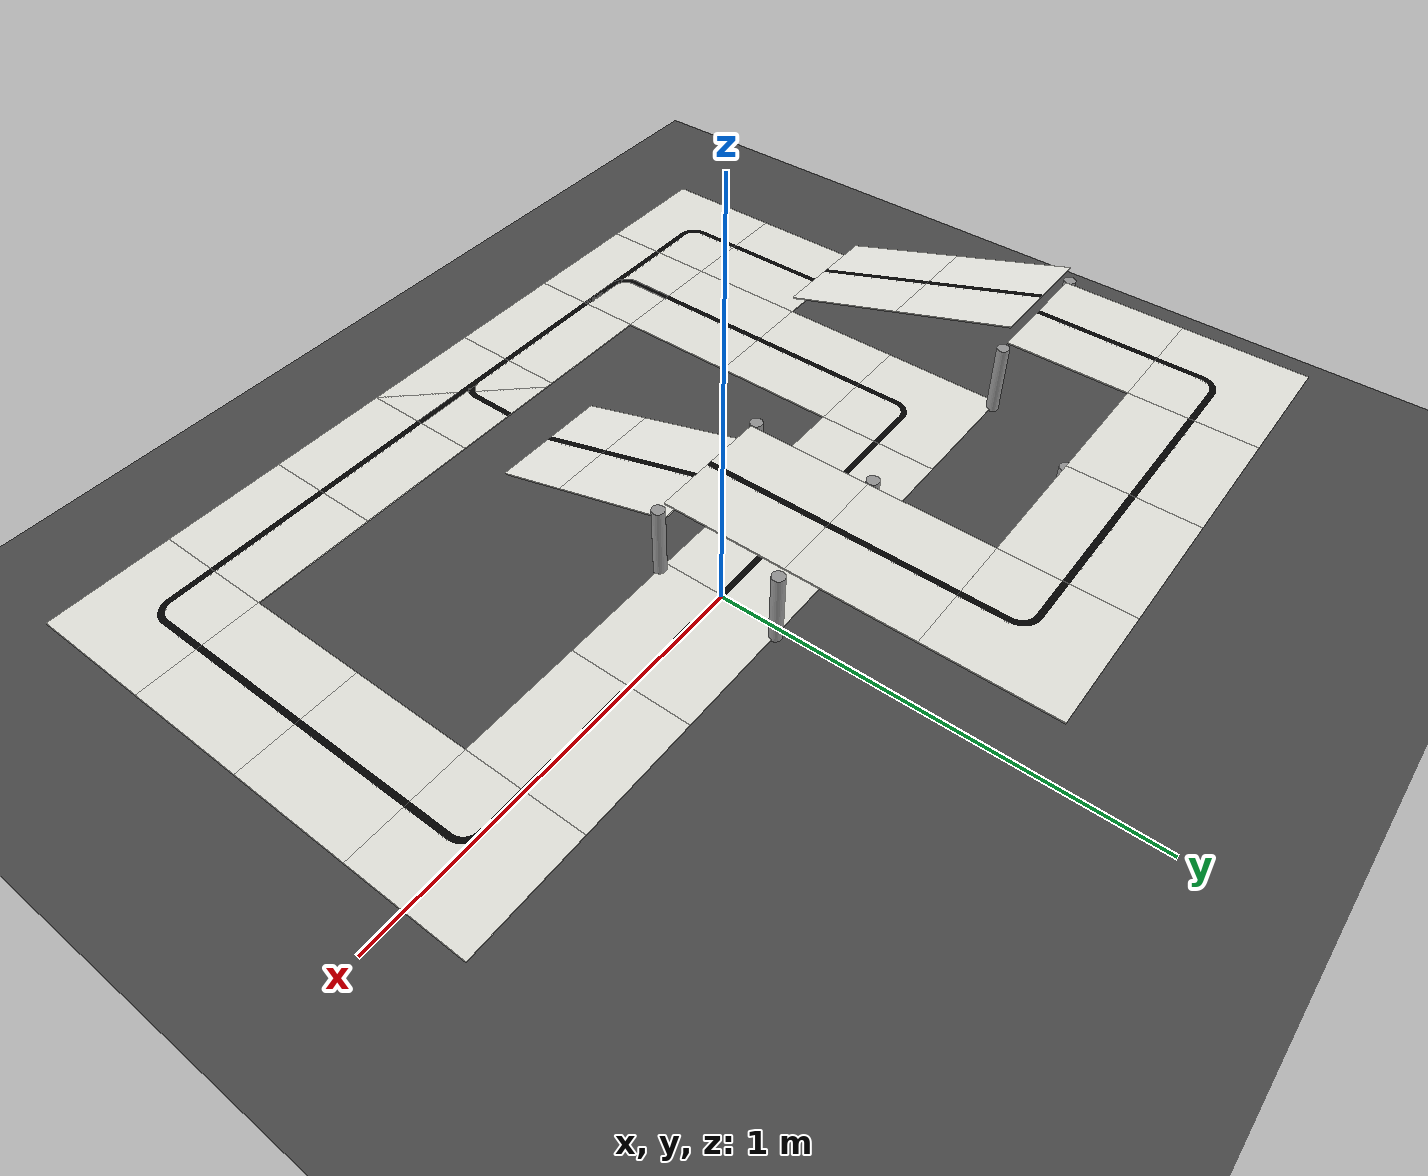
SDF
<sdf version='1.7'>
  <world name='default'>
    <!-- Iluminacao Natural Solar Suave (Sem ofuscamento, com sombras realistas) -->
    <light name='sun' type='directional'>
      <cast_shadows>0</cast_shadows>
      <pose>5 5 10 0 0.45 0.75</pose>
      <diffuse>0.85 0.85 0.82 1</diffuse>
      <specular>0.15 0.15 0.15 1</specular>
      <attenuation>
        <range>1000</range>
        <constant>0.9</constant>
        <linear>0.01</linear>
        <quadratic>0.001</quadratic>
      </attenuation>
      <direction>-0.45 -0.45 -0.77</direction>
    </light>

    <scene>
      <ambient>0.45 0.45 0.45 1</ambient>
      <background>0.65 0.75 0.85 1</background>
      <shadows>0</shadows>
    </scene>

    <model name='ground_plane'>
      <static>1</static>
      <link name='link'>
        <collision name='collision'>
          <geometry>
            <plane>
              <normal>0 0 1</normal>
              <size>100 100</size>
            </plane>
          </geometry>
          <surface>
            <contact><collide_bitmask>65535</collide_bitmask><ode/></contact>
            <friction>
              <ode><mu>100</mu><mu2>50</mu2></ode>
              <torsional><ode/></torsional>
            </friction>
            <bounce/>
          </surface>
        </collision>
        <visual name='visual'>
          <cast_shadows>0</cast_shadows>
          <geometry>
            <plane>
              <normal>0 0 1</normal>
              <size>100 100</size>
            </plane>
          </geometry>
          <material>
            <script>
              <uri>file://media/materials/scripts/gazebo.material</uri>
              <name>Gazebo/DarkGrey</name>
            </script>
          </material>
        </visual>
      </link>
    </model>

    <gravity>0 0 -9.8</gravity>
    <magnetic_field>6e-06 2.3e-05 -4.2e-05</magnetic_field>
    <atmosphere type='adiabatic'/>
    <physics type='ode'>
      <max_step_size>0.001</max_step_size>
      <real_time_factor>1</real_time_factor>
      <real_time_update_rate>1000</real_time_update_rate>
    </physics>

    <audio>
      <device>none</device>
    </audio>

    <spherical_coordinates>
      <surface_model>EARTH_WGS84</surface_model>
      <latitude_deg>0</latitude_deg>
      <longitude_deg>0</longitude_deg>
      <elevation>0</elevation>
      <heading_deg>0</heading_deg>
    </spherical_coordinates>

    <model name='tile_reta_g1'>
      <static>1</static>
      <link name='link'>
        <visual name='visual'>
          <pose>0 0 0 1.5708 -0 0</pose>
          <geometry>
            <mesh>
              <uri>/workspace/tiles/tile-reta/meshes/tile_reta.dae</uri>
              <scale>1 1 1</scale>
            </mesh>
          </geometry>
        </visual>
        <collision name='collision'>
          <geometry>
            <box>
              <size>0.30 0.30 0.003</size>
            </box>
          </geometry>
          <surface>
            <contact><ode/></contact>
            <friction>
              <ode><mu>100</mu><mu2>50</mu2></ode>
              <torsional><ode/></torsional>
            </friction>
          </surface>
        </collision>
      </link>
      <pose>-0.6000 0.1500 0.0010 0 0.000000 0.000000</pose>
    </model>

    <model name='tile_reta_tunnel'>
      <static>1</static>
      <link name='link'>
        <visual name='visual'>
          <pose>0 0 0 1.5708 -0 0</pose>
          <geometry>
            <mesh>
              <uri>/workspace/tiles/tile-reta/meshes/tile_reta.dae</uri>
              <scale>1 1 1</scale>
            </mesh>
          </geometry>
        </visual>
        <collision name='collision'>
          <geometry>
            <box>
              <size>0.30 0.30 0.003</size>
            </box>
          </geometry>
          <surface>
            <contact><ode/></contact>
            <friction>
              <ode><mu>100</mu><mu2>50</mu2></ode>
              <torsional><ode/></torsional>
            </friction>
          </surface>
        </collision>
      </link>
      <pose>-0.3000 0.1500 0.0010 0 0.000000 0.000000</pose>
    </model>

    <model name='tile_reta_g3'>
      <static>1</static>
      <link name='link'>
        <visual name='visual'>
          <pose>0 0 0 1.5708 -0 0</pose>
          <geometry>
            <mesh>
              <uri>/workspace/tiles/tile-reta/meshes/tile_reta.dae</uri>
              <scale>1 1 1</scale>
            </mesh>
          </geometry>
        </visual>
        <collision name='collision'>
          <geometry>
            <box>
              <size>0.30 0.30 0.003</size>
            </box>
          </geometry>
          <surface>
            <contact><ode/></contact>
            <friction>
              <ode><mu>100</mu><mu2>50</mu2></ode>
              <torsional><ode/></torsional>
            </friction>
          </surface>
        </collision>
      </link>
      <pose>0.0000 0.1500 0.0010 0 0.000000 0.000000</pose>
    </model>

    <model name='tile_reta_g4'>
      <static>1</static>
      <link name='link'>
        <visual name='visual'>
          <pose>0 0 0 1.5708 -0 0</pose>
          <geometry>
            <mesh>
              <uri>/workspace/tiles/tile-reta/meshes/tile_reta.dae</uri>
              <scale>1 1 1</scale>
            </mesh>
          </geometry>
        </visual>
        <collision name='collision'>
          <geometry>
            <box>
              <size>0.30 0.30 0.003</size>
            </box>
          </geometry>
          <surface>
            <contact><ode/></contact>
            <friction>
              <ode><mu>100</mu><mu2>50</mu2></ode>
              <torsional><ode/></torsional>
            </friction>
          </surface>
        </collision>
      </link>
      <pose>0.3000 0.1500 0.0010 0 0.000000 0.000000</pose>
    </model>

    <model name='tile_curva_r1'>
      <static>1</static>
      <link name='link'>
        <visual name='visual'>
          <pose>0 0 0 1.5708 -0 0</pose>
          <geometry>
            <mesh>
              <uri>/workspace/tiles/tile-curva/meshes/tile_curva.dae</uri>
              <scale>1 1 1</scale>
            </mesh>
          </geometry>
        </visual>
        <collision name='collision'>
          <geometry>
            <box>
              <size>0.30 0.30 0.003</size>
            </box>
          </geometry>
          <surface>
            <contact><ode/></contact>
            <friction>
              <ode><mu>100</mu><mu2>50</mu2></ode>
              <torsional><ode/></torsional>
            </friction>
          </surface>
        </collision>
      </link>
      <pose>0.6000 0.1500 0.0010 0 0.000000 0.000000</pose>
    </model>

    <model name='tile_reta_r2'>
      <static>1</static>
      <link name='link'>
        <visual name='visual'>
          <pose>0 0 0 1.5708 -0 0</pose>
          <geometry>
            <mesh>
              <uri>/workspace/tiles/tile-reta/meshes/tile_reta.dae</uri>
              <scale>1 1 1</scale>
            </mesh>
          </geometry>
        </visual>
        <collision name='collision'>
          <geometry>
            <box>
              <size>0.30 0.30 0.003</size>
            </box>
          </geometry>
          <surface>
            <contact><ode/></contact>
            <friction>
              <ode><mu>100</mu><mu2>50</mu2></ode>
              <torsional><ode/></torsional>
            </friction>
          </surface>
        </collision>
      </link>
      <pose>0.9000 -0.1500 0.0010 0 0.000000 4.712400</pose>
    </model>

    <model name='tile_reta_r3'>
      <static>1</static>
      <link name='link'>
        <visual name='visual'>
          <pose>0 0 0 1.5708 -0 0</pose>
          <geometry>
            <mesh>
              <uri>/workspace/tiles/tile-reta/meshes/tile_reta.dae</uri>
              <scale>1 1 1</scale>
            </mesh>
          </geometry>
        </visual>
        <collision name='collision'>
          <geometry>
            <box>
              <size>0.30 0.30 0.003</size>
            </box>
          </geometry>
          <surface>
            <contact><ode/></contact>
            <friction>
              <ode><mu>100</mu><mu2>50</mu2></ode>
              <torsional><ode/></torsional>
            </friction>
          </surface>
        </collision>
      </link>
      <pose>0.9000 -0.4500 0.0010 0 0.000000 4.712400</pose>
    </model>

    <model name='tile_curva_r4'>
      <static>1</static>
      <link name='link'>
        <visual name='visual'>
          <pose>0 0 0 1.5708 -0 0</pose>
          <geometry>
            <mesh>
              <uri>/workspace/tiles/tile-curva/meshes/tile_curva.dae</uri>
              <scale>1 1 1</scale>
            </mesh>
          </geometry>
        </visual>
        <collision name='collision'>
          <geometry>
            <box>
              <size>0.30 0.30 0.003</size>
            </box>
          </geometry>
          <surface>
            <contact><ode/></contact>
            <friction>
              <ode><mu>100</mu><mu2>50</mu2></ode>
              <torsional><ode/></torsional>
            </friction>
          </surface>
        </collision>
      </link>
      <pose>0.9000 -0.7500 0.0010 0 0.000000 4.712400</pose>
    </model>

    <model name='tile_reta_s1'>
      <static>1</static>
      <link name='link'>
        <visual name='visual'>
          <pose>0 0 0 1.5708 -0 0</pose>
          <geometry>
            <mesh>
              <uri>/workspace/tiles/tile-reta/meshes/tile_reta.dae</uri>
              <scale>1 1 1</scale>
            </mesh>
          </geometry>
        </visual>
        <collision name='collision'>
          <geometry>
            <box>
              <size>0.30 0.30 0.003</size>
            </box>
          </geometry>
          <surface>
            <contact><ode/></contact>
            <friction>
              <ode><mu>100</mu><mu2>50</mu2></ode>
              <torsional><ode/></torsional>
            </friction>
          </surface>
        </collision>
      </link>
      <pose>0.6000 -1.0500 0.0010 0 0.000000 3.141600</pose>
    </model>

    <model name='tile_reta_s2'>
      <static>1</static>
      <link name='link'>
        <visual name='visual'>
          <pose>0 0 0 1.5708 -0 0</pose>
          <geometry>
            <mesh>
              <uri>/workspace/tiles/tile-reta/meshes/tile_reta.dae</uri>
              <scale>1 1 1</scale>
            </mesh>
          </geometry>
        </visual>
        <collision name='collision'>
          <geometry>
            <box>
              <size>0.30 0.30 0.003</size>
            </box>
          </geometry>
          <surface>
            <contact><ode/></contact>
            <friction>
              <ode><mu>100</mu><mu2>50</mu2></ode>
              <torsional><ode/></torsional>
            </friction>
          </surface>
        </collision>
      </link>
      <pose>0.3000 -1.0500 0.0010 0 0.000000 3.141600</pose>
    </model>

    <model name='tile_reta_s3'>
      <static>1</static>
      <link name='link'>
        <visual name='visual'>
          <pose>0 0 0 1.5708 -0 0</pose>
          <geometry>
            <mesh>
              <uri>/workspace/tiles/tile-reta/meshes/tile_reta.dae</uri>
              <scale>1 1 1</scale>
            </mesh>
          </geometry>
        </visual>
        <collision name='collision'>
          <geometry>
            <box>
              <size>0.30 0.30 0.003</size>
            </box>
          </geometry>
          <surface>
            <contact><ode/></contact>
            <friction>
              <ode><mu>100</mu><mu2>50</mu2></ode>
              <torsional><ode/></torsional>
            </friction>
          </surface>
        </collision>
      </link>
      <pose>0.0000 -1.0500 0.0010 0 0.000000 3.141600</pose>
    </model>

    <model name='tile_reta_s4'>
      <static>1</static>
      <link name='link'>
        <visual name='visual'>
          <pose>0 0 0 1.5708 -0 0</pose>
          <geometry>
            <mesh>
              <uri>/workspace/tiles/tile-reta/meshes/tile_reta.dae</uri>
              <scale>1 1 1</scale>
            </mesh>
          </geometry>
        </visual>
        <collision name='collision'>
          <geometry>
            <box>
              <size>0.30 0.30 0.003</size>
            </box>
          </geometry>
          <surface>
            <contact><ode/></contact>
            <friction>
              <ode><mu>100</mu><mu2>50</mu2></ode>
              <torsional><ode/></torsional>
            </friction>
          </surface>
        </collision>
      </link>
      <pose>-0.3000 -1.0500 0.0010 0 0.000000 3.141600</pose>
    </model>

    <model name='tile_reta_s5'>
      <static>1</static>
      <link name='link'>
        <visual name='visual'>
          <pose>0 0 0 1.5708 -0 0</pose>
          <geometry>
            <mesh>
              <uri>/workspace/tiles/tile-reta/meshes/tile_reta.dae</uri>
              <scale>1 1 1</scale>
            </mesh>
          </geometry>
        </visual>
        <collision name='collision'>
          <geometry>
            <box>
              <size>0.30 0.30 0.003</size>
            </box>
          </geometry>
          <surface>
            <contact><ode/></contact>
            <friction>
              <ode><mu>100</mu><mu2>50</mu2></ode>
              <torsional><ode/></torsional>
            </friction>
          </surface>
        </collision>
      </link>
      <pose>-0.6000 -1.0500 0.0010 0 0.000000 3.141600</pose>
    </model>

    <model name='tile_curva_w1'>
      <static>1</static>
      <link name='link'>
        <visual name='visual'>
          <pose>0 0 0 1.5708 -0 0</pose>
          <geometry>
            <mesh>
              <uri>/workspace/tiles/tile-curva/meshes/tile_curva.dae</uri>
              <scale>1 1 1</scale>
            </mesh>
          </geometry>
        </visual>
        <collision name='collision'>
          <geometry>
            <box>
              <size>0.30 0.30 0.003</size>
            </box>
          </geometry>
          <surface>
            <contact><ode/></contact>
            <friction>
              <ode><mu>100</mu><mu2>50</mu2></ode>
              <torsional><ode/></torsional>
            </friction>
          </surface>
        </collision>
      </link>
      <pose>-0.9000 -1.0500 0.0010 0 0.000000 3.141600</pose>
    </model>

    <model name='tile_reta_w2'>
      <static>1</static>
      <link name='link'>
        <visual name='visual'>
          <pose>0 0 0 1.5708 -0 0</pose>
          <geometry>
            <mesh>
              <uri>/workspace/tiles/tile-reta/meshes/tile_reta.dae</uri>
              <scale>1 1 1</scale>
            </mesh>
          </geometry>
        </visual>
        <collision name='collision'>
          <geometry>
            <box>
              <size>0.30 0.30 0.003</size>
            </box>
          </geometry>
          <surface>
            <contact><ode/></contact>
            <friction>
              <ode><mu>100</mu><mu2>50</mu2></ode>
              <torsional><ode/></torsional>
            </friction>
          </surface>
        </collision>
      </link>
      <pose>-1.2000 -0.7500 0.0010 0 0.000000 1.570800</pose>
    </model>

    <model name='tile_rampa_subida_1'>
      <static>1</static>
      <link name='link'>
        <visual name='visual'>
          <pose>0 0 0 1.5708 -0 0</pose>
          <geometry>
            <mesh>
              <uri>/workspace/tiles/tile-reta/meshes/tile_reta.dae</uri>
              <scale>1.05 1 1</scale>
            </mesh>
          </geometry>
        </visual>
        <collision name='collision'>
          <geometry>
            <box>
              <size>0.315 0.30 0.006</size>
            </box>
          </geometry>
          <surface>
            <contact><ode/></contact>
            <friction>
              <ode><mu>100</mu><mu2>50</mu2></ode>
              <torsional><ode/></torsional>
            </friction>
          </surface>
        </collision>
      </link>
      <pose>-1.2000 -0.4500 0.0460 0 -0.291457 1.570800</pose>
    </model>

    <model name='tile_rampa_subida_2'>
      <static>1</static>
      <link name='link'>
        <visual name='visual'>
          <pose>0 0 0 1.5708 -0 0</pose>
          <geometry>
            <mesh>
              <uri>/workspace/tiles/tile-reta/meshes/tile_reta.dae</uri>
              <scale>1.05 1 1</scale>
            </mesh>
          </geometry>
        </visual>
        <collision name='collision'>
          <geometry>
            <box>
              <size>0.315 0.30 0.006</size>
            </box>
          </geometry>
          <surface>
            <contact><ode/></contact>
            <friction>
              <ode><mu>100</mu><mu2>50</mu2></ode>
              <torsional><ode/></torsional>
            </friction>
          </surface>
        </collision>
      </link>
      <pose>-1.2000 -0.1500 0.1360 0 -0.291457 1.570800</pose>
    </model>

    <model name='tile_reta_topo_w'>
      <static>1</static>
      <link name='link'>
        <visual name='visual'>
          <pose>0 0 0 1.5708 -0 0</pose>
          <geometry>
            <mesh>
              <uri>/workspace/tiles/tile-reta/meshes/tile_reta.dae</uri>
              <scale>1 1 1</scale>
            </mesh>
          </geometry>
        </visual>
        <collision name='collision'>
          <geometry>
            <box>
              <size>0.30 0.30 0.003</size>
            </box>
          </geometry>
          <surface>
            <contact><ode/></contact>
            <friction>
              <ode><mu>100</mu><mu2>50</mu2></ode>
              <torsional><ode/></torsional>
            </friction>
          </surface>
        </collision>
      </link>
      <pose>-1.2000 0.1500 0.1810 0 0.000000 1.570800</pose>
    </model>

    <model name='tile_curva_topo_nw'>
      <static>1</static>
      <link name='link'>
        <visual name='visual'>
          <pose>0 0 0 1.5708 -0 0</pose>
          <geometry>
            <mesh>
              <uri>/workspace/tiles/tile-curva/meshes/tile_curva.dae</uri>
              <scale>1 1 1</scale>
            </mesh>
          </geometry>
        </visual>
        <collision name='collision'>
          <geometry>
            <box>
              <size>0.30 0.30 0.003</size>
            </box>
          </geometry>
          <surface>
            <contact><ode/></contact>
            <friction>
              <ode><mu>100</mu><mu2>50</mu2></ode>
              <torsional><ode/></torsional>
            </friction>
          </surface>
        </collision>
      </link>
      <pose>-1.2000 0.4500 0.1810 0 0.000000 1.570800</pose>
    </model>

    <model name='tile_reta_topo_n1'>
      <static>1</static>
      <link name='link'>
        <visual name='visual'>
          <pose>0 0 0 1.5708 -0 0</pose>
          <geometry>
            <mesh>
              <uri>/workspace/tiles/tile-reta/meshes/tile_reta.dae</uri>
              <scale>1 1 1</scale>
            </mesh>
          </geometry>
        </visual>
        <collision name='collision'>
          <geometry>
            <box>
              <size>0.30 0.30 0.003</size>
            </box>
          </geometry>
          <surface>
            <contact><ode/></contact>
            <friction>
              <ode><mu>100</mu><mu2>50</mu2></ode>
              <torsional><ode/></torsional>
            </friction>
          </surface>
        </collision>
      </link>
      <pose>-0.9000 0.7500 0.1810 0 0.000000 0.000000</pose>
    </model>

    <model name='tile_reta_topo_n2'>
      <static>1</static>
      <link name='link'>
        <visual name='visual'>
          <pose>0 0 0 1.5708 -0 0</pose>
          <geometry>
            <mesh>
              <uri>/workspace/tiles/tile-reta/meshes/tile_reta.dae</uri>
              <scale>1 1 1</scale>
            </mesh>
          </geometry>
        </visual>
        <collision name='collision'>
          <geometry>
            <box>
              <size>0.30 0.30 0.003</size>
            </box>
          </geometry>
          <surface>
            <contact><ode/></contact>
            <friction>
              <ode><mu>100</mu><mu2>50</mu2></ode>
              <torsional><ode/></torsional>
            </friction>
          </surface>
        </collision>
      </link>
      <pose>-0.6000 0.7500 0.1810 0 0.000000 0.000000</pose>
    </model>

    <model name='tile_curva_topo_ne'>
      <static>1</static>
      <link name='link'>
        <visual name='visual'>
          <pose>0 0 0 1.5708 -0 0</pose>
          <geometry>
            <mesh>
              <uri>/workspace/tiles/tile-curva/meshes/tile_curva.dae</uri>
              <scale>1 1 1</scale>
            </mesh>
          </geometry>
        </visual>
        <collision name='collision'>
          <geometry>
            <box>
              <size>0.30 0.30 0.003</size>
            </box>
          </geometry>
          <surface>
            <contact><ode/></contact>
            <friction>
              <ode><mu>100</mu><mu2>50</mu2></ode>
              <torsional><ode/></torsional>
            </friction>
          </surface>
        </collision>
      </link>
      <pose>-0.3000 0.7500 0.1810 0 0.000000 0.000000</pose>
    </model>

    <model name='tile_reta_bridge_app'>
      <static>1</static>
      <link name='link'>
        <visual name='visual'>
          <pose>0 0 0 1.5708 -0 0</pose>
          <geometry>
            <mesh>
              <uri>/workspace/tiles/tile-reta/meshes/tile_reta.dae</uri>
              <scale>1 1 1</scale>
            </mesh>
          </geometry>
        </visual>
        <collision name='collision'>
          <geometry>
            <box>
              <size>0.30 0.30 0.003</size>
            </box>
          </geometry>
          <surface>
            <contact><ode/></contact>
            <friction>
              <ode><mu>100</mu><mu2>50</mu2></ode>
              <torsional><ode/></torsional>
            </friction>
          </surface>
        </collision>
      </link>
      <pose>-0.0000 0.4500 0.1810 0 0.000000 4.712400</pose>
    </model>

    <model name='tile_reta_viaduto'>
      <static>1</static>
      <link name='link'>
        <visual name='visual'>
          <pose>0 0 0 1.5708 -0 0</pose>
          <geometry>
            <mesh>
              <uri>/workspace/tiles/tile-reta/meshes/tile_reta.dae</uri>
              <scale>1 1 1</scale>
            </mesh>
          </geometry>
        </visual>
        <collision name='collision'>
          <geometry>
            <box>
              <size>0.30 0.30 0.003</size>
            </box>
          </geometry>
          <surface>
            <contact><ode/></contact>
            <friction>
              <ode><mu>100</mu><mu2>50</mu2></ode>
              <torsional><ode/></torsional>
            </friction>
          </surface>
        </collision>
      </link>
      <pose>-0.0000 0.1500 0.1810 0 0.000000 4.712400</pose>
    </model>

    <model name='tile_rampa_descida_1'>
      <static>1</static>
      <link name='link'>
        <visual name='visual'>
          <pose>0 0 0 1.5708 -0 0</pose>
          <geometry>
            <mesh>
              <uri>/workspace/tiles/tile-reta/meshes/tile_reta.dae</uri>
              <scale>1.05 1 1</scale>
            </mesh>
          </geometry>
        </visual>
        <collision name='collision'>
          <geometry>
            <box>
              <size>0.315 0.30 0.006</size>
            </box>
          </geometry>
          <surface>
            <contact><ode/></contact>
            <friction>
              <ode><mu>100</mu><mu2>50</mu2></ode>
              <torsional><ode/></torsional>
            </friction>
          </surface>
        </collision>
      </link>
      <pose>-0.0000 -0.1500 0.1360 0 0.291457 4.712400</pose>
    </model>

    <model name='tile_rampa_descida_2'>
      <static>1</static>
      <link name='link'>
        <visual name='visual'>
          <pose>0 0 0 1.5708 -0 0</pose>
          <geometry>
            <mesh>
              <uri>/workspace/tiles/tile-reta/meshes/tile_reta.dae</uri>
              <scale>1.05 1 1</scale>
            </mesh>
          </geometry>
        </visual>
        <collision name='collision'>
          <geometry>
            <box>
              <size>0.315 0.30 0.006</size>
            </box>
          </geometry>
          <surface>
            <contact><ode/></contact>
            <friction>
              <ode><mu>100</mu><mu2>50</mu2></ode>
              <torsional><ode/></torsional>
            </friction>
          </surface>
        </collision>
      </link>
      <pose>-0.0000 -0.4500 0.0460 0 0.291457 4.712400</pose>
    </model>

    <model name='tile_curva_ret_1'>
      <static>1</static>
      <link name='link'>
        <visual name='visual'>
          <pose>0 0 0 1.5708 -0 0</pose>
          <geometry>
            <mesh>
              <uri>/workspace/tiles/tile-curva/meshes/tile_curva.dae</uri>
              <scale>1 1 1</scale>
            </mesh>
          </geometry>
        </visual>
        <collision name='collision'>
          <geometry>
            <box>
              <size>0.30 0.30 0.003</size>
            </box>
          </geometry>
          <surface>
            <contact><ode/></contact>
            <friction>
              <ode><mu>100</mu><mu2>50</mu2></ode>
              <torsional><ode/></torsional>
            </friction>
          </surface>
        </collision>
      </link>
      <pose>-0.0000 -0.7500 0.0010 0 0.000000 4.712400</pose>
    </model>

    <model name='tile_reta_ret_2'>
      <static>1</static>
      <link name='link'>
        <visual name='visual'>
          <pose>0 0 0 1.5708 -0 0</pose>
          <geometry>
            <mesh>
              <uri>/workspace/tiles/tile-reta/meshes/tile_reta.dae</uri>
              <scale>1 1 1</scale>
            </mesh>
          </geometry>
        </visual>
        <collision name='collision'>
          <geometry>
            <box>
              <size>0.30 0.30 0.003</size>
            </box>
          </geometry>
          <surface>
            <contact><ode/></contact>
            <friction>
              <ode><mu>100</mu><mu2>50</mu2></ode>
              <torsional><ode/></torsional>
            </friction>
          </surface>
        </collision>
      </link>
      <pose>-0.3000 -1.0500 0.0010 0 0.000000 3.141600</pose>
    </model>

    <model name='tile_curva_ret_3'>
      <static>1</static>
      <link name='link'>
        <visual name='visual'>
          <pose>0 0 0 1.5708 -0 0</pose>
          <geometry>
            <mesh>
              <uri>/workspace/tiles/tile-curva/meshes/tile_curva.dae</uri>
              <scale>1 1 1</scale>
            </mesh>
          </geometry>
        </visual>
        <collision name='collision'>
          <geometry>
            <box>
              <size>0.30 0.30 0.003</size>
            </box>
          </geometry>
          <surface>
            <contact><ode/></contact>
            <friction>
              <ode><mu>100</mu><mu2>50</mu2></ode>
              <torsional><ode/></torsional>
            </friction>
          </surface>
        </collision>
      </link>
      <pose>-0.6000 -1.0500 0.0010 0 0.000000 3.141600</pose>
    </model>

    <model name='tile_reta_ret_4'>
      <static>1</static>
      <link name='link'>
        <visual name='visual'>
          <pose>0 0 0 1.5708 -0 0</pose>
          <geometry>
            <mesh>
              <uri>/workspace/tiles/tile-reta/meshes/tile_reta.dae</uri>
              <scale>1 1 1</scale>
            </mesh>
          </geometry>
        </visual>
        <collision name='collision'>
          <geometry>
            <box>
              <size>0.30 0.30 0.003</size>
            </box>
          </geometry>
          <surface>
            <contact><ode/></contact>
            <friction>
              <ode><mu>100</mu><mu2>50</mu2></ode>
              <torsional><ode/></torsional>
            </friction>
          </surface>
        </collision>
      </link>
      <pose>-0.9000 -0.7500 0.0010 0 0.000000 1.570800</pose>
    </model>

    <model name='tile_reta_ret_5'>
      <static>1</static>
      <link name='link'>
        <visual name='visual'>
          <pose>0 0 0 1.5708 -0 0</pose>
          <geometry>
            <mesh>
              <uri>/workspace/tiles/tile-reta/meshes/tile_reta.dae</uri>
              <scale>1 1 1</scale>
            </mesh>
          </geometry>
        </visual>
        <collision name='collision'>
          <geometry>
            <box>
              <size>0.30 0.30 0.003</size>
            </box>
          </geometry>
          <surface>
            <contact><ode/></contact>
            <friction>
              <ode><mu>100</mu><mu2>50</mu2></ode>
              <torsional><ode/></torsional>
            </friction>
          </surface>
        </collision>
      </link>
      <pose>-0.9000 -0.4500 0.0010 0 0.000000 1.570800</pose>
    </model>

    <model name='tile_curva_ret_6'>
      <static>1</static>
      <link name='link'>
        <visual name='visual'>
          <pose>0 0 0 1.5708 -0 0</pose>
          <geometry>
            <mesh>
              <uri>/workspace/tiles/tile-curva/meshes/tile_curva.dae</uri>
              <scale>1 1 1</scale>
            </mesh>
          </geometry>
        </visual>
        <collision name='collision'>
          <geometry>
            <box>
              <size>0.30 0.30 0.003</size>
            </box>
          </geometry>
          <surface>
            <contact><ode/></contact>
            <friction>
              <ode><mu>100</mu><mu2>50</mu2></ode>
              <torsional><ode/></torsional>
            </friction>
          </surface>
        </collision>
      </link>
      <pose>-0.9000 -0.1500 0.0010 0 0.000000 1.570800</pose>
    </model>

    <model name='pillar_nw'>
      <static>1</static>
      <link name='link'>
        <visual name='visual'>
          <geometry>
            <cylinder>
              <radius>0.015</radius>
              <length>0.18</length>
            </cylinder>
          </geometry>
          <material>
            <script>
              <uri>file://media/materials/scripts/gazebo.material</uri>
              <name>Gazebo/Grey</name>
            </script>
          </material>
        </visual>
        <collision name='collision'>
          <geometry>
            <cylinder>
              <radius>0.015</radius>
              <length>0.18</length>
            </cylinder>
          </geometry>
        </collision>
      </link>
      <pose>-0.3200 0.1500 0.0900 0 0 0</pose>
    </model>

    <model name='pillar_ne'>
      <static>1</static>
      <link name='link'>
        <visual name='visual'>
          <geometry>
            <cylinder>
              <radius>0.015</radius>
              <length>0.18</length>
            </cylinder>
          </geometry>
          <material>
            <script>
              <uri>file://media/materials/scripts/gazebo.material</uri>
              <name>Gazebo/Grey</name>
            </script>
          </material>
        </visual>
        <collision name='collision'>
          <geometry>
            <cylinder>
              <radius>0.015</radius>
              <length>0.18</length>
            </cylinder>
          </geometry>
        </collision>
      </link>
      <pose>0.0200 0.1500 0.0900 0 0 0</pose>
    </model>

    <model name='pillar_sw'>
      <static>1</static>
      <link name='link'>
        <visual name='visual'>
          <geometry>
            <cylinder>
              <radius>0.015</radius>
              <length>0.18</length>
            </cylinder>
          </geometry>
          <material>
            <script>
              <uri>file://media/materials/scripts/gazebo.material</uri>
              <name>Gazebo/Grey</name>
            </script>
          </material>
        </visual>
        <collision name='collision'>
          <geometry>
            <cylinder>
              <radius>0.015</radius>
              <length>0.18</length>
            </cylinder>
          </geometry>
        </collision>
      </link>
      <pose>-0.3200 -0.1500 0.0900 0 0 0</pose>
    </model>

    <model name='pillar_se'>
      <static>1</static>
      <link name='link'>
        <visual name='visual'>
          <geometry>
            <cylinder>
              <radius>0.015</radius>
              <length>0.18</length>
            </cylinder>
          </geometry>
          <material>
            <script>
              <uri>file://media/materials/scripts/gazebo.material</uri>
              <name>Gazebo/Grey</name>
            </script>
          </material>
        </visual>
        <collision name='collision'>
          <geometry>
            <cylinder>
              <radius>0.015</radius>
              <length>0.18</length>
            </cylinder>
          </geometry>
        </collision>
      </link>
      <pose>0.0200 -0.1500 0.0900 0 0 0</pose>
    </model>

    <model name='pillar_n_top'>
      <static>1</static>
      <link name='link'>
        <visual name='visual'>
          <geometry>
            <cylinder>
              <radius>0.015</radius>
              <length>0.18</length>
            </cylinder>
          </geometry>
          <material>
            <script>
              <uri>file://media/materials/scripts/gazebo.material</uri>
              <name>Gazebo/Grey</name>
            </script>
          </material>
        </visual>
        <collision name='collision'>
          <geometry>
            <cylinder>
              <radius>0.015</radius>
              <length>0.18</length>
            </cylinder>
          </geometry>
        </collision>
      </link>
      <pose>-0.6000 0.4500 0.0900 0 0 0</pose>
    </model>

    <model name='pillar_w_top'>
      <static>1</static>
      <link name='link'>
        <visual name='visual'>
          <geometry>
            <cylinder>
              <radius>0.015</radius>
              <length>0.18</length>
            </cylinder>
          </geometry>
          <material>
            <script>
              <uri>file://media/materials/scripts/gazebo.material</uri>
              <name>Gazebo/Grey</name>
            </script>
          </material>
        </visual>
        <collision name='collision'>
          <geometry>
            <cylinder>
              <radius>0.015</radius>
              <length>0.18</length>
            </cylinder>
          </geometry>
        </collision>
      </link>
      <pose>-1.2200 0.1500 0.0900 0 0 0</pose>
    </model>

    <model name='pillar_e_top'>
      <static>1</static>
      <link name='link'>
        <visual name='visual'>
          <geometry>
            <cylinder>
              <radius>0.015</radius>
              <length>0.18</length>
            </cylinder>
          </geometry>
          <material>
            <script>
              <uri>file://media/materials/scripts/gazebo.material</uri>
              <name>Gazebo/Grey</name>
            </script>
          </material>
        </visual>
        <collision name='collision'>
          <geometry>
            <cylinder>
              <radius>0.015</radius>
              <length>0.18</length>
            </cylinder>
          </geometry>
        </collision>
      </link>
      <pose>-0.8800 0.1500 0.0900 0 0 0</pose>
    </model>

    <gui fullscreen='0'>
      <camera name='user_camera'>
        <pose>0.8 -1.8 1.8 0 0.65 2.15</pose>
        <view_controller>orbit</view_controller>
        <projection_type>perspective</projection_type>
      </camera>
    </gui>
  </world>
</sdf>
